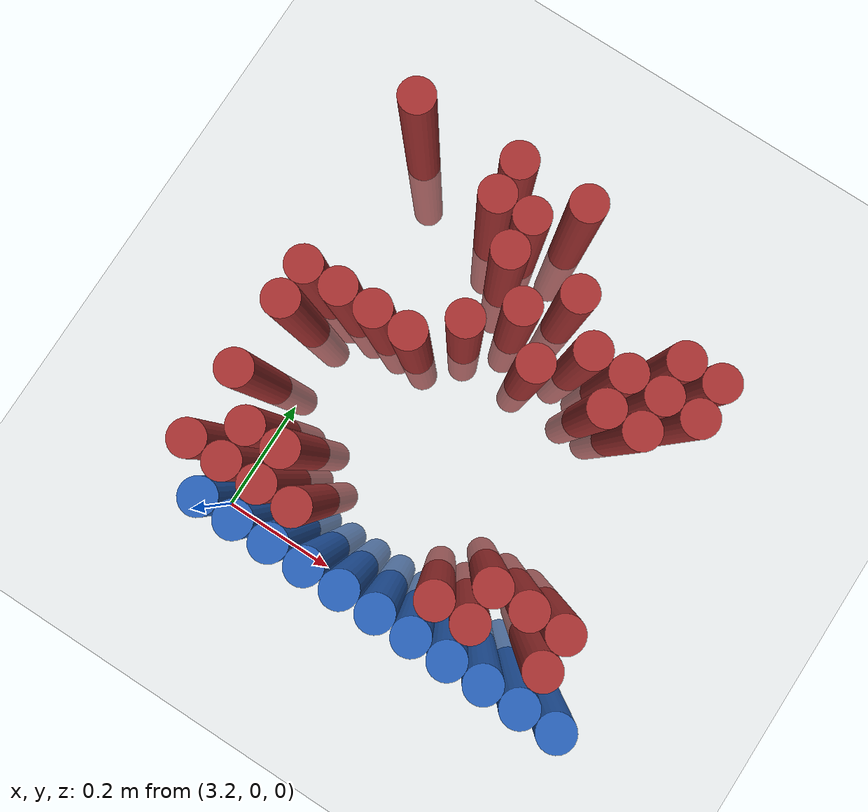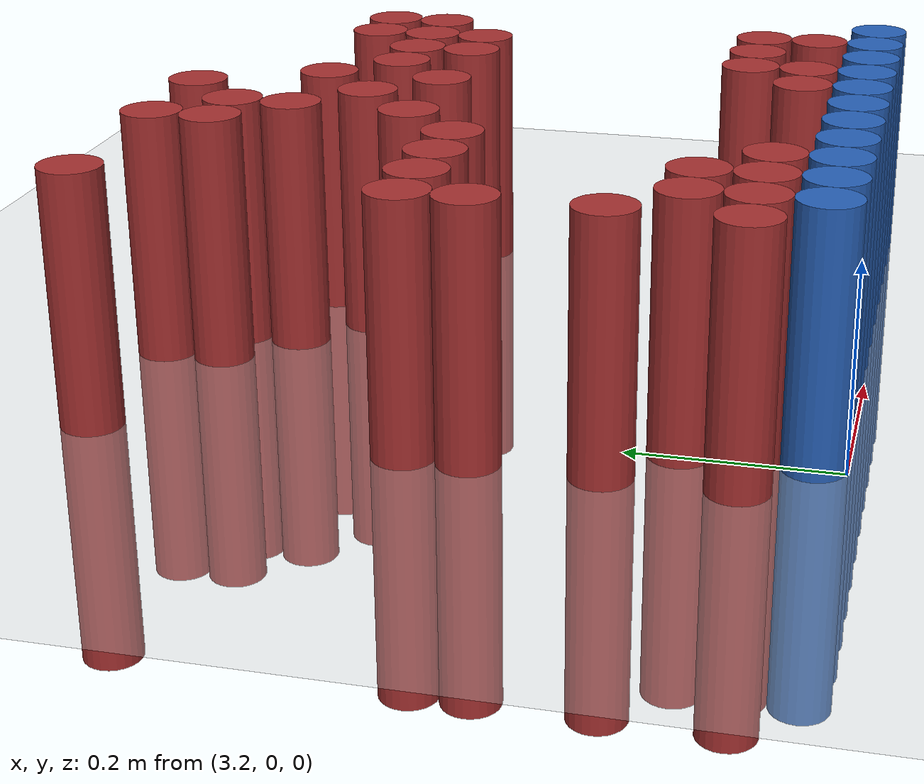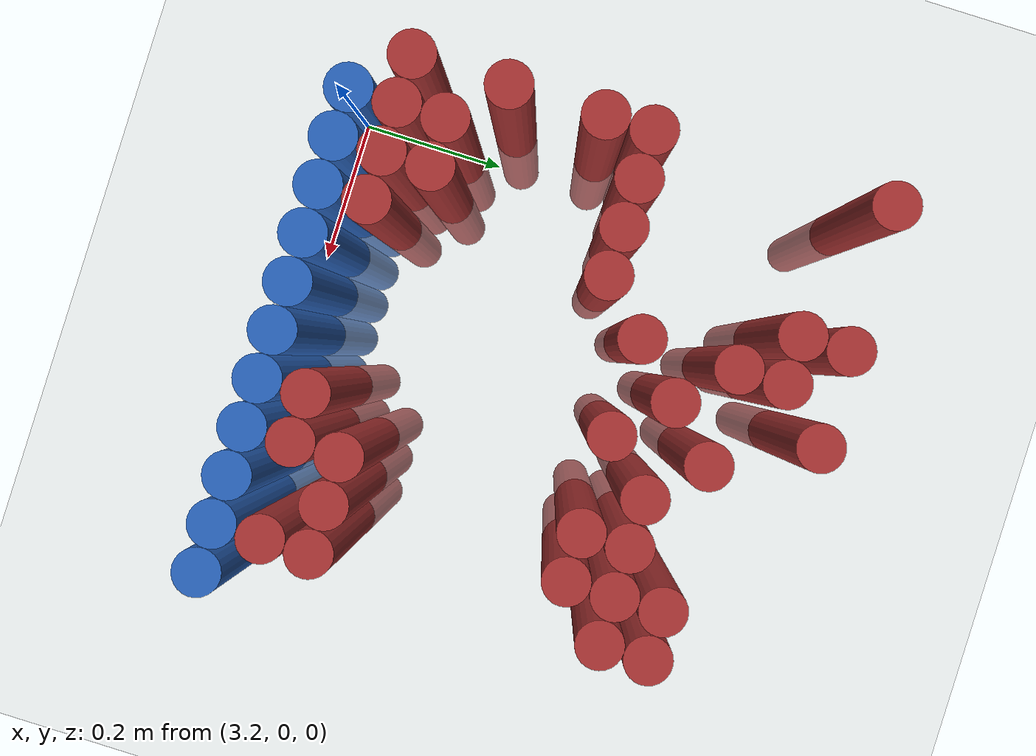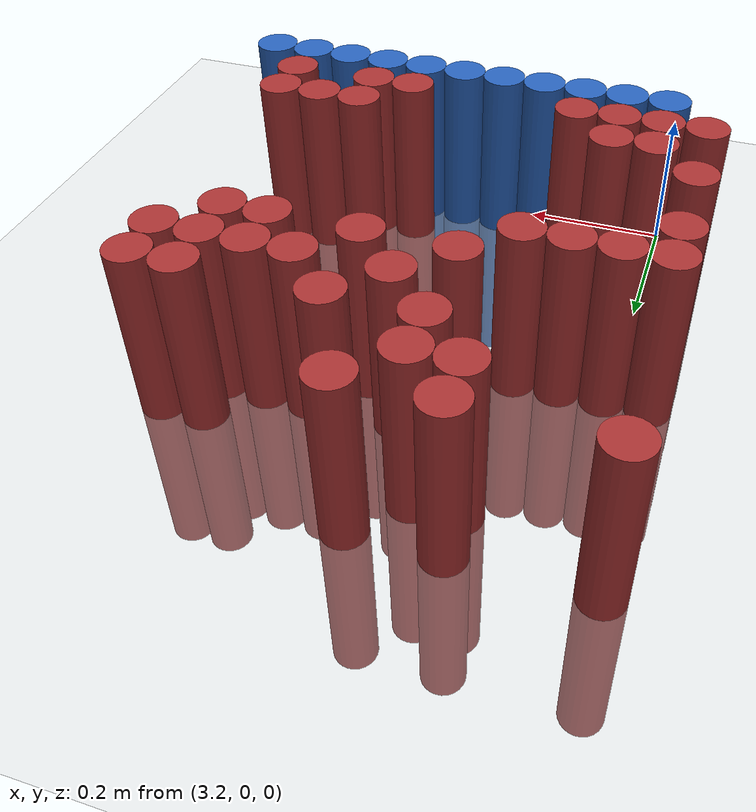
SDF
<sdf version="1.6">
 <world name="default">
  <model name="ground_plane">
   <static>1</static>
   <link name="link">
    <collision name="collision">
     <geometry><plane><normal>0 0 1</normal><size>100 100</size></plane></geometry>
     <surface><friction><ode><mu>100</mu><mu2>50</mu2></ode></friction></surface>
    </collision>
    <visual name="visual">
     <cast_shadows>0</cast_shadows>
     <geometry><plane><normal>0 0 1</normal><size>100 100</size></plane></geometry>
     <material>
      <script><uri>file://media/materials/scripts/gazebo.material</uri><name>Gazebo/Grey</name></script>
     </material>
    </visual>
   </link>
  </model>
  <model name="unit_cylinder_215">
   <static>1</static>
   <pose>3.150000 0.690000 0.000000 0.000000 0.000000 0.000000</pose>
   <link name="link">
    <inertial>
     <mass>1</mass>
     <inertia><ixx>0.145833</ixx><ixy>0</ixy><ixz>0</ixz><iyy>0.145833</iyy><iyz>0</iyz><izz>0.125</izz></inertia>
    </inertial>
    <collision name="collision">
     <geometry><cylinder><radius>0.030000</radius><length>0.5</length></cylinder></geometry>
    </collision>
    <visual name="visual">
     <geometry><cylinder><radius>0.030000</radius><length>0.5</length></cylinder></geometry>
     <material>
      <ambient>0.648000 0.192000 0.192000 1</ambient>
      <diffuse>0.648000 0.192000 0.192000 1</diffuse>
     </material>
     <material>
      <script><name>Gazebo/Grey</name><uri>file://media/materials/scripts/gazebo.material</uri></script>
     </material>
    </visual>
   </link>
  </model>
  <model name="unit_cylinder_216">
   <static>1</static>
   <pose>3.330000 0.690000 0.000000 0.000000 0.000000 0.000000</pose>
   <link name="link">
    <inertial>
     <mass>1</mass>
     <inertia><ixx>0.145833</ixx><ixy>0</ixy><ixz>0</ixz><iyy>0.145833</iyy><iyz>0</iyz><izz>0.125</izz></inertia>
    </inertial>
    <collision name="collision">
     <geometry><cylinder><radius>0.030000</radius><length>0.5</length></cylinder></geometry>
    </collision>
    <visual name="visual">
     <geometry><cylinder><radius>0.030000</radius><length>0.5</length></cylinder></geometry>
     <material>
      <ambient>0.648000 0.192000 0.192000 1</ambient>
      <diffuse>0.648000 0.192000 0.192000 1</diffuse>
     </material>
     <material>
      <script><name>Gazebo/Grey</name><uri>file://media/materials/scripts/gazebo.material</uri></script>
     </material>
    </visual>
   </link>
  </model>
  <model name="unit_cylinder_217">
   <static>1</static>
   <pose>3.450000 0.690000 0.000000 0.000000 0.000000 0.000000</pose>
   <link name="link">
    <inertial>
     <mass>1</mass>
     <inertia><ixx>0.145833</ixx><ixy>0</ixy><ixz>0</ixz><iyy>0.145833</iyy><iyz>0</iyz><izz>0.125</izz></inertia>
    </inertial>
    <collision name="collision">
     <geometry><cylinder><radius>0.030000</radius><length>0.5</length></cylinder></geometry>
    </collision>
    <visual name="visual">
     <geometry><cylinder><radius>0.030000</radius><length>0.5</length></cylinder></geometry>
     <material>
      <ambient>0.648000 0.192000 0.192000 1</ambient>
      <diffuse>0.648000 0.192000 0.192000 1</diffuse>
     </material>
     <material>
      <script><name>Gazebo/Grey</name><uri>file://media/materials/scripts/gazebo.material</uri></script>
     </material>
    </visual>
   </link>
  </model>
  <model name="unit_cylinder_221">
   <static>1</static>
   <pose>3.330000 0.630000 0.000000 0.000000 0.000000 0.000000</pose>
   <link name="link">
    <inertial>
     <mass>1</mass>
     <inertia><ixx>0.145833</ixx><ixy>0</ixy><ixz>0</ixz><iyy>0.145833</iyy><iyz>0</iyz><izz>0.125</izz></inertia>
    </inertial>
    <collision name="collision">
     <geometry><cylinder><radius>0.030000</radius><length>0.5</length></cylinder></geometry>
    </collision>
    <visual name="visual">
     <geometry><cylinder><radius>0.030000</radius><length>0.5</length></cylinder></geometry>
     <material>
      <ambient>0.648000 0.192000 0.192000 1</ambient>
      <diffuse>0.648000 0.192000 0.192000 1</diffuse>
     </material>
     <material>
      <script><name>Gazebo/Grey</name><uri>file://media/materials/scripts/gazebo.material</uri></script>
     </material>
    </visual>
   </link>
  </model>
  <model name="unit_cylinder_222">
   <static>1</static>
   <pose>3.390000 0.630000 0.000000 0.000000 0.000000 0.000000</pose>
   <link name="link">
    <inertial>
     <mass>1</mass>
     <inertia><ixx>0.145833</ixx><ixy>0</ixy><ixz>0</ixz><iyy>0.145833</iyy><iyz>0</iyz><izz>0.125</izz></inertia>
    </inertial>
    <collision name="collision">
     <geometry><cylinder><radius>0.030000</radius><length>0.5</length></cylinder></geometry>
    </collision>
    <visual name="visual">
     <geometry><cylinder><radius>0.030000</radius><length>0.5</length></cylinder></geometry>
     <material>
      <ambient>0.648000 0.192000 0.192000 1</ambient>
      <diffuse>0.648000 0.192000 0.192000 1</diffuse>
     </material>
     <material>
      <script><name>Gazebo/Grey</name><uri>file://media/materials/scripts/gazebo.material</uri></script>
     </material>
    </visual>
   </link>
  </model>
  <model name="unit_cylinder_227">
   <static>1</static>
   <pose>3.390000 0.570000 0.000000 0.000000 0.000000 0.000000</pose>
   <link name="link">
    <inertial>
     <mass>1</mass>
     <inertia><ixx>0.145833</ixx><ixy>0</ixy><ixz>0</ixz><iyy>0.145833</iyy><iyz>0</iyz><izz>0.125</izz></inertia>
    </inertial>
    <collision name="collision">
     <geometry><cylinder><radius>0.030000</radius><length>0.5</length></cylinder></geometry>
    </collision>
    <visual name="visual">
     <geometry><cylinder><radius>0.030000</radius><length>0.5</length></cylinder></geometry>
     <material>
      <ambient>0.648000 0.192000 0.192000 1</ambient>
      <diffuse>0.648000 0.192000 0.192000 1</diffuse>
     </material>
     <material>
      <script><name>Gazebo/Grey</name><uri>file://media/materials/scripts/gazebo.material</uri></script>
     </material>
    </visual>
   </link>
  </model>
  <model name="unit_cylinder_228">
   <static>1</static>
   <pose>3.510000 0.570000 0.000000 0.000000 0.000000 0.000000</pose>
   <link name="link">
    <inertial>
     <mass>1</mass>
     <inertia><ixx>0.145833</ixx><ixy>0</ixy><ixz>0</ixz><iyy>0.145833</iyy><iyz>0</iyz><izz>0.125</izz></inertia>
    </inertial>
    <collision name="collision">
     <geometry><cylinder><radius>0.030000</radius><length>0.5</length></cylinder></geometry>
    </collision>
    <visual name="visual">
     <geometry><cylinder><radius>0.030000</radius><length>0.5</length></cylinder></geometry>
     <material>
      <ambient>0.648000 0.192000 0.192000 1</ambient>
      <diffuse>0.648000 0.192000 0.192000 1</diffuse>
     </material>
     <material>
      <script><name>Gazebo/Grey</name><uri>file://media/materials/scripts/gazebo.material</uri></script>
     </material>
    </visual>
   </link>
  </model>
  <model name="unit_cylinder_229">
   <static>1</static>
   <pose>3.690000 0.570000 0.000000 0.000000 0.000000 0.000000</pose>
   <link name="link">
    <inertial>
     <mass>1</mass>
     <inertia><ixx>0.145833</ixx><ixy>0</ixy><ixz>0</ixz><iyy>0.145833</iyy><iyz>0</iyz><izz>0.125</izz></inertia>
    </inertial>
    <collision name="collision">
     <geometry><cylinder><radius>0.030000</radius><length>0.5</length></cylinder></geometry>
    </collision>
    <visual name="visual">
     <geometry><cylinder><radius>0.030000</radius><length>0.5</length></cylinder></geometry>
     <material>
      <ambient>0.648000 0.192000 0.192000 1</ambient>
      <diffuse>0.648000 0.192000 0.192000 1</diffuse>
     </material>
     <material>
      <script><name>Gazebo/Grey</name><uri>file://media/materials/scripts/gazebo.material</uri></script>
     </material>
    </visual>
   </link>
  </model>
  <model name="unit_cylinder_230">
   <static>1</static>
   <pose>3.750000 0.570000 0.000000 0.000000 0.000000 0.000000</pose>
   <link name="link">
    <inertial>
     <mass>1</mass>
     <inertia><ixx>0.145833</ixx><ixy>0</ixy><ixz>0</ixz><iyy>0.145833</iyy><iyz>0</iyz><izz>0.125</izz></inertia>
    </inertial>
    <collision name="collision">
     <geometry><cylinder><radius>0.030000</radius><length>0.5</length></cylinder></geometry>
    </collision>
    <visual name="visual">
     <geometry><cylinder><radius>0.030000</radius><length>0.5</length></cylinder></geometry>
     <material>
      <ambient>0.648000 0.192000 0.192000 1</ambient>
      <diffuse>0.648000 0.192000 0.192000 1</diffuse>
     </material>
     <material>
      <script><name>Gazebo/Grey</name><uri>file://media/materials/scripts/gazebo.material</uri></script>
     </material>
    </visual>
   </link>
  </model>
  <model name="unit_cylinder_234">
   <static>1</static>
   <pose>3.450000 0.510000 0.000000 0.000000 0.000000 0.000000</pose>
   <link name="link">
    <inertial>
     <mass>1</mass>
     <inertia><ixx>0.145833</ixx><ixy>0</ixy><ixz>0</ixz><iyy>0.145833</iyy><iyz>0</iyz><izz>0.125</izz></inertia>
    </inertial>
    <collision name="collision">
     <geometry><cylinder><radius>0.030000</radius><length>0.5</length></cylinder></geometry>
    </collision>
    <visual name="visual">
     <geometry><cylinder><radius>0.030000</radius><length>0.5</length></cylinder></geometry>
     <material>
      <ambient>0.648000 0.192000 0.192000 1</ambient>
      <diffuse>0.648000 0.192000 0.192000 1</diffuse>
     </material>
     <material>
      <script><name>Gazebo/Grey</name><uri>file://media/materials/scripts/gazebo.material</uri></script>
     </material>
    </visual>
   </link>
  </model>
  <model name="unit_cylinder_235">
   <static>1</static>
   <pose>3.570000 0.510000 0.000000 0.000000 0.000000 0.000000</pose>
   <link name="link">
    <inertial>
     <mass>1</mass>
     <inertia><ixx>0.145833</ixx><ixy>0</ixy><ixz>0</ixz><iyy>0.145833</iyy><iyz>0</iyz><izz>0.125</izz></inertia>
    </inertial>
    <collision name="collision">
     <geometry><cylinder><radius>0.030000</radius><length>0.5</length></cylinder></geometry>
    </collision>
    <visual name="visual">
     <geometry><cylinder><radius>0.030000</radius><length>0.5</length></cylinder></geometry>
     <material>
      <ambient>0.648000 0.192000 0.192000 1</ambient>
      <diffuse>0.648000 0.192000 0.192000 1</diffuse>
     </material>
     <material>
      <script><name>Gazebo/Grey</name><uri>file://media/materials/scripts/gazebo.material</uri></script>
     </material>
    </visual>
   </link>
  </model>
  <model name="unit_cylinder_236">
   <static>1</static>
   <pose>3.630000 0.510000 0.000000 0.000000 0.000000 0.000000</pose>
   <link name="link">
    <inertial>
     <mass>1</mass>
     <inertia><ixx>0.145833</ixx><ixy>0</ixy><ixz>0</ixz><iyy>0.145833</iyy><iyz>0</iyz><izz>0.125</izz></inertia>
    </inertial>
    <collision name="collision">
     <geometry><cylinder><radius>0.030000</radius><length>0.5</length></cylinder></geometry>
    </collision>
    <visual name="visual">
     <geometry><cylinder><radius>0.030000</radius><length>0.5</length></cylinder></geometry>
     <material>
      <ambient>0.648000 0.192000 0.192000 1</ambient>
      <diffuse>0.648000 0.192000 0.192000 1</diffuse>
     </material>
     <material>
      <script><name>Gazebo/Grey</name><uri>file://media/materials/scripts/gazebo.material</uri></script>
     </material>
    </visual>
   </link>
  </model>
  <model name="unit_cylinder_237">
   <static>1</static>
   <pose>3.690000 0.510000 0.000000 0.000000 0.000000 0.000000</pose>
   <link name="link">
    <inertial>
     <mass>1</mass>
     <inertia><ixx>0.145833</ixx><ixy>0</ixy><ixz>0</ixz><iyy>0.145833</iyy><iyz>0</iyz><izz>0.125</izz></inertia>
    </inertial>
    <collision name="collision">
     <geometry><cylinder><radius>0.030000</radius><length>0.5</length></cylinder></geometry>
    </collision>
    <visual name="visual">
     <geometry><cylinder><radius>0.030000</radius><length>0.5</length></cylinder></geometry>
     <material>
      <ambient>0.648000 0.192000 0.192000 1</ambient>
      <diffuse>0.648000 0.192000 0.192000 1</diffuse>
     </material>
     <material>
      <script><name>Gazebo/Grey</name><uri>file://media/materials/scripts/gazebo.material</uri></script>
     </material>
    </visual>
   </link>
  </model>
  <model name="unit_cylinder_238">
   <static>1</static>
   <pose>3.750000 0.510000 0.000000 0.000000 0.000000 0.000000</pose>
   <link name="link">
    <inertial>
     <mass>1</mass>
     <inertia><ixx>0.145833</ixx><ixy>0</ixy><ixz>0</ixz><iyy>0.145833</iyy><iyz>0</iyz><izz>0.125</izz></inertia>
    </inertial>
    <collision name="collision">
     <geometry><cylinder><radius>0.030000</radius><length>0.5</length></cylinder></geometry>
    </collision>
    <visual name="visual">
     <geometry><cylinder><radius>0.030000</radius><length>0.5</length></cylinder></geometry>
     <material>
      <ambient>0.648000 0.192000 0.192000 1</ambient>
      <diffuse>0.648000 0.192000 0.192000 1</diffuse>
     </material>
     <material>
      <script><name>Gazebo/Grey</name><uri>file://media/materials/scripts/gazebo.material</uri></script>
     </material>
    </visual>
   </link>
  </model>
  <model name="unit_cylinder_242">
   <static>1</static>
   <pose>3.390000 0.450000 0.000000 0.000000 0.000000 0.000000</pose>
   <link name="link">
    <inertial>
     <mass>1</mass>
     <inertia><ixx>0.145833</ixx><ixy>0</ixy><ixz>0</ixz><iyy>0.145833</iyy><iyz>0</iyz><izz>0.125</izz></inertia>
    </inertial>
    <collision name="collision">
     <geometry><cylinder><radius>0.030000</radius><length>0.5</length></cylinder></geometry>
    </collision>
    <visual name="visual">
     <geometry><cylinder><radius>0.030000</radius><length>0.5</length></cylinder></geometry>
     <material>
      <ambient>0.648000 0.192000 0.192000 1</ambient>
      <diffuse>0.648000 0.192000 0.192000 1</diffuse>
     </material>
     <material>
      <script><name>Gazebo/Grey</name><uri>file://media/materials/scripts/gazebo.material</uri></script>
     </material>
    </visual>
   </link>
  </model>
  <model name="unit_cylinder_243">
   <static>1</static>
   <pose>3.510000 0.450000 0.000000 0.000000 0.000000 0.000000</pose>
   <link name="link">
    <inertial>
     <mass>1</mass>
     <inertia><ixx>0.145833</ixx><ixy>0</ixy><ixz>0</ixz><iyy>0.145833</iyy><iyz>0</iyz><izz>0.125</izz></inertia>
    </inertial>
    <collision name="collision">
     <geometry><cylinder><radius>0.030000</radius><length>0.5</length></cylinder></geometry>
    </collision>
    <visual name="visual">
     <geometry><cylinder><radius>0.030000</radius><length>0.5</length></cylinder></geometry>
     <material>
      <ambient>0.648000 0.192000 0.192000 1</ambient>
      <diffuse>0.648000 0.192000 0.192000 1</diffuse>
     </material>
     <material>
      <script><name>Gazebo/Grey</name><uri>file://media/materials/scripts/gazebo.material</uri></script>
     </material>
    </visual>
   </link>
  </model>
  <model name="unit_cylinder_244">
   <static>1</static>
   <pose>3.630000 0.450000 0.000000 0.000000 0.000000 0.000000</pose>
   <link name="link">
    <inertial>
     <mass>1</mass>
     <inertia><ixx>0.145833</ixx><ixy>0</ixy><ixz>0</ixz><iyy>0.145833</iyy><iyz>0</iyz><izz>0.125</izz></inertia>
    </inertial>
    <collision name="collision">
     <geometry><cylinder><radius>0.030000</radius><length>0.5</length></cylinder></geometry>
    </collision>
    <visual name="visual">
     <geometry><cylinder><radius>0.030000</radius><length>0.5</length></cylinder></geometry>
     <material>
      <ambient>0.648000 0.192000 0.192000 1</ambient>
      <diffuse>0.648000 0.192000 0.192000 1</diffuse>
     </material>
     <material>
      <script><name>Gazebo/Grey</name><uri>file://media/materials/scripts/gazebo.material</uri></script>
     </material>
    </visual>
   </link>
  </model>
  <model name="unit_cylinder_245">
   <static>1</static>
   <pose>3.690000 0.450000 0.000000 0.000000 0.000000 0.000000</pose>
   <link name="link">
    <inertial>
     <mass>1</mass>
     <inertia><ixx>0.145833</ixx><ixy>0</ixy><ixz>0</ixz><iyy>0.145833</iyy><iyz>0</iyz><izz>0.125</izz></inertia>
    </inertial>
    <collision name="collision">
     <geometry><cylinder><radius>0.030000</radius><length>0.5</length></cylinder></geometry>
    </collision>
    <visual name="visual">
     <geometry><cylinder><radius>0.030000</radius><length>0.5</length></cylinder></geometry>
     <material>
      <ambient>0.648000 0.192000 0.192000 1</ambient>
      <diffuse>0.648000 0.192000 0.192000 1</diffuse>
     </material>
     <material>
      <script><name>Gazebo/Grey</name><uri>file://media/materials/scripts/gazebo.material</uri></script>
     </material>
    </visual>
   </link>
  </model>
  <model name="unit_cylinder_250">
   <static>1</static>
   <pose>3.150000 0.390000 0.000000 0.000000 0.000000 0.000000</pose>
   <link name="link">
    <inertial>
     <mass>1</mass>
     <inertia><ixx>0.145833</ixx><ixy>0</ixy><ixz>0</ixz><iyy>0.145833</iyy><iyz>0</iyz><izz>0.125</izz></inertia>
    </inertial>
    <collision name="collision">
     <geometry><cylinder><radius>0.030000</radius><length>0.5</length></cylinder></geometry>
    </collision>
    <visual name="visual">
     <geometry><cylinder><radius>0.030000</radius><length>0.5</length></cylinder></geometry>
     <material>
      <ambient>0.648000 0.192000 0.192000 1</ambient>
      <diffuse>0.648000 0.192000 0.192000 1</diffuse>
     </material>
     <material>
      <script><name>Gazebo/Grey</name><uri>file://media/materials/scripts/gazebo.material</uri></script>
     </material>
    </visual>
   </link>
  </model>
  <model name="unit_cylinder_251">
   <static>1</static>
   <pose>3.210000 0.390000 0.000000 0.000000 0.000000 0.000000</pose>
   <link name="link">
    <inertial>
     <mass>1</mass>
     <inertia><ixx>0.145833</ixx><ixy>0</ixy><ixz>0</ixz><iyy>0.145833</iyy><iyz>0</iyz><izz>0.125</izz></inertia>
    </inertial>
    <collision name="collision">
     <geometry><cylinder><radius>0.030000</radius><length>0.5</length></cylinder></geometry>
    </collision>
    <visual name="visual">
     <geometry><cylinder><radius>0.030000</radius><length>0.5</length></cylinder></geometry>
     <material>
      <ambient>0.648000 0.192000 0.192000 1</ambient>
      <diffuse>0.648000 0.192000 0.192000 1</diffuse>
     </material>
     <material>
      <script><name>Gazebo/Grey</name><uri>file://media/materials/scripts/gazebo.material</uri></script>
     </material>
    </visual>
   </link>
  </model>
  <model name="unit_cylinder_252">
   <static>1</static>
   <pose>3.270000 0.390000 0.000000 0.000000 0.000000 0.000000</pose>
   <link name="link">
    <inertial>
     <mass>1</mass>
     <inertia><ixx>0.145833</ixx><ixy>0</ixy><ixz>0</ixz><iyy>0.145833</iyy><iyz>0</iyz><izz>0.125</izz></inertia>
    </inertial>
    <collision name="collision">
     <geometry><cylinder><radius>0.030000</radius><length>0.5</length></cylinder></geometry>
    </collision>
    <visual name="visual">
     <geometry><cylinder><radius>0.030000</radius><length>0.5</length></cylinder></geometry>
     <material>
      <ambient>0.648000 0.192000 0.192000 1</ambient>
      <diffuse>0.648000 0.192000 0.192000 1</diffuse>
     </material>
     <material>
      <script><name>Gazebo/Grey</name><uri>file://media/materials/scripts/gazebo.material</uri></script>
     </material>
    </visual>
   </link>
  </model>
  <model name="unit_cylinder_253">
   <static>1</static>
   <pose>3.330000 0.390000 0.000000 0.000000 0.000000 0.000000</pose>
   <link name="link">
    <inertial>
     <mass>1</mass>
     <inertia><ixx>0.145833</ixx><ixy>0</ixy><ixz>0</ixz><iyy>0.145833</iyy><iyz>0</iyz><izz>0.125</izz></inertia>
    </inertial>
    <collision name="collision">
     <geometry><cylinder><radius>0.030000</radius><length>0.5</length></cylinder></geometry>
    </collision>
    <visual name="visual">
     <geometry><cylinder><radius>0.030000</radius><length>0.5</length></cylinder></geometry>
     <material>
      <ambient>0.648000 0.192000 0.192000 1</ambient>
      <diffuse>0.648000 0.192000 0.192000 1</diffuse>
     </material>
     <material>
      <script><name>Gazebo/Grey</name><uri>file://media/materials/scripts/gazebo.material</uri></script>
     </material>
    </visual>
   </link>
  </model>
  <model name="unit_cylinder_260">
   <static>1</static>
   <pose>3.150000 0.330000 0.000000 0.000000 0.000000 0.000000</pose>
   <link name="link">
    <inertial>
     <mass>1</mass>
     <inertia><ixx>0.145833</ixx><ixy>0</ixy><ixz>0</ixz><iyy>0.145833</iyy><iyz>0</iyz><izz>0.125</izz></inertia>
    </inertial>
    <collision name="collision">
     <geometry><cylinder><radius>0.030000</radius><length>0.5</length></cylinder></geometry>
    </collision>
    <visual name="visual">
     <geometry><cylinder><radius>0.030000</radius><length>0.5</length></cylinder></geometry>
     <material>
      <ambient>0.648000 0.192000 0.192000 1</ambient>
      <diffuse>0.648000 0.192000 0.192000 1</diffuse>
     </material>
     <material>
      <script><name>Gazebo/Grey</name><uri>file://media/materials/scripts/gazebo.material</uri></script>
     </material>
    </visual>
   </link>
  </model>
  <model name="unit_cylinder_268">
   <static>1</static>
   <pose>3.150000 0.210000 0.000000 0.000000 0.000000 0.000000</pose>
   <link name="link">
    <inertial>
     <mass>1</mass>
     <inertia><ixx>0.145833</ixx><ixy>0</ixy><ixz>0</ixz><iyy>0.145833</iyy><iyz>0</iyz><izz>0.125</izz></inertia>
    </inertial>
    <collision name="collision">
     <geometry><cylinder><radius>0.030000</radius><length>0.5</length></cylinder></geometry>
    </collision>
    <visual name="visual">
     <geometry><cylinder><radius>0.030000</radius><length>0.5</length></cylinder></geometry>
     <material>
      <ambient>0.648000 0.192000 0.192000 1</ambient>
      <diffuse>0.648000 0.192000 0.192000 1</diffuse>
     </material>
     <material>
      <script><name>Gazebo/Grey</name><uri>file://media/materials/scripts/gazebo.material</uri></script>
     </material>
    </visual>
   </link>
  </model>
  <model name="unit_cylinder_279">
   <static>1</static>
   <pose>3.210000 0.150000 0.000000 0.000000 0.000000 0.000000</pose>
   <link name="link">
    <inertial>
     <mass>1</mass>
     <inertia><ixx>0.145833</ixx><ixy>0</ixy><ixz>0</ixz><iyy>0.145833</iyy><iyz>0</iyz><izz>0.125</izz></inertia>
    </inertial>
    <collision name="collision">
     <geometry><cylinder><radius>0.030000</radius><length>0.5</length></cylinder></geometry>
    </collision>
    <visual name="visual">
     <geometry><cylinder><radius>0.030000</radius><length>0.5</length></cylinder></geometry>
     <material>
      <ambient>0.648000 0.192000 0.192000 1</ambient>
      <diffuse>0.648000 0.192000 0.192000 1</diffuse>
     </material>
     <material>
      <script><name>Gazebo/Grey</name><uri>file://media/materials/scripts/gazebo.material</uri></script>
     </material>
    </visual>
   </link>
  </model>
  <model name="unit_cylinder_280">
   <static>1</static>
   <pose>3.270000 0.150000 0.000000 0.000000 0.000000 0.000000</pose>
   <link name="link">
    <inertial>
     <mass>1</mass>
     <inertia><ixx>0.145833</ixx><ixy>0</ixy><ixz>0</ixz><iyy>0.145833</iyy><iyz>0</iyz><izz>0.125</izz></inertia>
    </inertial>
    <collision name="collision">
     <geometry><cylinder><radius>0.030000</radius><length>0.5</length></cylinder></geometry>
    </collision>
    <visual name="visual">
     <geometry><cylinder><radius>0.030000</radius><length>0.5</length></cylinder></geometry>
     <material>
      <ambient>0.648000 0.192000 0.192000 1</ambient>
      <diffuse>0.648000 0.192000 0.192000 1</diffuse>
     </material>
     <material>
      <script><name>Gazebo/Grey</name><uri>file://media/materials/scripts/gazebo.material</uri></script>
     </material>
    </visual>
   </link>
  </model>
  <model name="unit_cylinder_281">
   <static>1</static>
   <pose>3.630000 0.150000 0.000000 0.000000 0.000000 0.000000</pose>
   <link name="link">
    <inertial>
     <mass>1</mass>
     <inertia><ixx>0.145833</ixx><ixy>0</ixy><ixz>0</ixz><iyy>0.145833</iyy><iyz>0</iyz><izz>0.125</izz></inertia>
    </inertial>
    <collision name="collision">
     <geometry><cylinder><radius>0.030000</radius><length>0.5</length></cylinder></geometry>
    </collision>
    <visual name="visual">
     <geometry><cylinder><radius>0.030000</radius><length>0.5</length></cylinder></geometry>
     <material>
      <ambient>0.648000 0.192000 0.192000 1</ambient>
      <diffuse>0.648000 0.192000 0.192000 1</diffuse>
     </material>
     <material>
      <script><name>Gazebo/Grey</name><uri>file://media/materials/scripts/gazebo.material</uri></script>
     </material>
    </visual>
   </link>
  </model>
  <model name="unit_cylinder_282">
   <static>1</static>
   <pose>3.690000 0.150000 0.000000 0.000000 0.000000 0.000000</pose>
   <link name="link">
    <inertial>
     <mass>1</mass>
     <inertia><ixx>0.145833</ixx><ixy>0</ixy><ixz>0</ixz><iyy>0.145833</iyy><iyz>0</iyz><izz>0.125</izz></inertia>
    </inertial>
    <collision name="collision">
     <geometry><cylinder><radius>0.030000</radius><length>0.5</length></cylinder></geometry>
    </collision>
    <visual name="visual">
     <geometry><cylinder><radius>0.030000</radius><length>0.5</length></cylinder></geometry>
     <material>
      <ambient>0.648000 0.192000 0.192000 1</ambient>
      <diffuse>0.648000 0.192000 0.192000 1</diffuse>
     </material>
     <material>
      <script><name>Gazebo/Grey</name><uri>file://media/materials/scripts/gazebo.material</uri></script>
     </material>
    </visual>
   </link>
  </model>
  <model name="unit_cylinder_283">
   <static>1</static>
   <pose>3.750000 0.150000 0.000000 0.000000 0.000000 0.000000</pose>
   <link name="link">
    <inertial>
     <mass>1</mass>
     <inertia><ixx>0.145833</ixx><ixy>0</ixy><ixz>0</ixz><iyy>0.145833</iyy><iyz>0</iyz><izz>0.125</izz></inertia>
    </inertial>
    <collision name="collision">
     <geometry><cylinder><radius>0.030000</radius><length>0.5</length></cylinder></geometry>
    </collision>
    <visual name="visual">
     <geometry><cylinder><radius>0.030000</radius><length>0.5</length></cylinder></geometry>
     <material>
      <ambient>0.648000 0.192000 0.192000 1</ambient>
      <diffuse>0.648000 0.192000 0.192000 1</diffuse>
     </material>
     <material>
      <script><name>Gazebo/Grey</name><uri>file://media/materials/scripts/gazebo.material</uri></script>
     </material>
    </visual>
   </link>
  </model>
  <model name="unit_cylinder_291">
   <static>1</static>
   <pose>3.150000 0.090000 0.000000 0.000000 0.000000 0.000000</pose>
   <link name="link">
    <inertial>
     <mass>1</mass>
     <inertia><ixx>0.145833</ixx><ixy>0</ixy><ixz>0</ixz><iyy>0.145833</iyy><iyz>0</iyz><izz>0.125</izz></inertia>
    </inertial>
    <collision name="collision">
     <geometry><cylinder><radius>0.030000</radius><length>0.5</length></cylinder></geometry>
    </collision>
    <visual name="visual">
     <geometry><cylinder><radius>0.030000</radius><length>0.5</length></cylinder></geometry>
     <material>
      <ambient>0.648000 0.192000 0.192000 1</ambient>
      <diffuse>0.648000 0.192000 0.192000 1</diffuse>
     </material>
     <material>
      <script><name>Gazebo/Grey</name><uri>file://media/materials/scripts/gazebo.material</uri></script>
     </material>
    </visual>
   </link>
  </model>
  <model name="unit_cylinder_292">
   <static>1</static>
   <pose>3.210000 0.090000 0.000000 0.000000 0.000000 0.000000</pose>
   <link name="link">
    <inertial>
     <mass>1</mass>
     <inertia><ixx>0.145833</ixx><ixy>0</ixy><ixz>0</ixz><iyy>0.145833</iyy><iyz>0</iyz><izz>0.125</izz></inertia>
    </inertial>
    <collision name="collision">
     <geometry><cylinder><radius>0.030000</radius><length>0.5</length></cylinder></geometry>
    </collision>
    <visual name="visual">
     <geometry><cylinder><radius>0.030000</radius><length>0.5</length></cylinder></geometry>
     <material>
      <ambient>0.648000 0.192000 0.192000 1</ambient>
      <diffuse>0.648000 0.192000 0.192000 1</diffuse>
     </material>
     <material>
      <script><name>Gazebo/Grey</name><uri>file://media/materials/scripts/gazebo.material</uri></script>
     </material>
    </visual>
   </link>
  </model>
  <model name="unit_cylinder_293">
   <static>1</static>
   <pose>3.270000 0.090000 0.000000 0.000000 0.000000 0.000000</pose>
   <link name="link">
    <inertial>
     <mass>1</mass>
     <inertia><ixx>0.145833</ixx><ixy>0</ixy><ixz>0</ixz><iyy>0.145833</iyy><iyz>0</iyz><izz>0.125</izz></inertia>
    </inertial>
    <collision name="collision">
     <geometry><cylinder><radius>0.030000</radius><length>0.5</length></cylinder></geometry>
    </collision>
    <visual name="visual">
     <geometry><cylinder><radius>0.030000</radius><length>0.5</length></cylinder></geometry>
     <material>
      <ambient>0.648000 0.192000 0.192000 1</ambient>
      <diffuse>0.648000 0.192000 0.192000 1</diffuse>
     </material>
     <material>
      <script><name>Gazebo/Grey</name><uri>file://media/materials/scripts/gazebo.material</uri></script>
     </material>
    </visual>
   </link>
  </model>
  <model name="unit_cylinder_294">
   <static>1</static>
   <pose>3.330000 0.090000 0.000000 0.000000 0.000000 0.000000</pose>
   <link name="link">
    <inertial>
     <mass>1</mass>
     <inertia><ixx>0.145833</ixx><ixy>0</ixy><ixz>0</ixz><iyy>0.145833</iyy><iyz>0</iyz><izz>0.125</izz></inertia>
    </inertial>
    <collision name="collision">
     <geometry><cylinder><radius>0.030000</radius><length>0.5</length></cylinder></geometry>
    </collision>
    <visual name="visual">
     <geometry><cylinder><radius>0.030000</radius><length>0.5</length></cylinder></geometry>
     <material>
      <ambient>0.648000 0.192000 0.192000 1</ambient>
      <diffuse>0.648000 0.192000 0.192000 1</diffuse>
     </material>
     <material>
      <script><name>Gazebo/Grey</name><uri>file://media/materials/scripts/gazebo.material</uri></script>
     </material>
    </visual>
   </link>
  </model>
  <model name="unit_cylinder_295">
   <static>1</static>
   <pose>3.570000 0.090000 0.000000 0.000000 0.000000 0.000000</pose>
   <link name="link">
    <inertial>
     <mass>1</mass>
     <inertia><ixx>0.145833</ixx><ixy>0</ixy><ixz>0</ixz><iyy>0.145833</iyy><iyz>0</iyz><izz>0.125</izz></inertia>
    </inertial>
    <collision name="collision">
     <geometry><cylinder><radius>0.030000</radius><length>0.5</length></cylinder></geometry>
    </collision>
    <visual name="visual">
     <geometry><cylinder><radius>0.030000</radius><length>0.5</length></cylinder></geometry>
     <material>
      <ambient>0.648000 0.192000 0.192000 1</ambient>
      <diffuse>0.648000 0.192000 0.192000 1</diffuse>
     </material>
     <material>
      <script><name>Gazebo/Grey</name><uri>file://media/materials/scripts/gazebo.material</uri></script>
     </material>
    </visual>
   </link>
  </model>
  <model name="unit_cylinder_296">
   <static>1</static>
   <pose>3.630000 0.090000 0.000000 0.000000 0.000000 0.000000</pose>
   <link name="link">
    <inertial>
     <mass>1</mass>
     <inertia><ixx>0.145833</ixx><ixy>0</ixy><ixz>0</ixz><iyy>0.145833</iyy><iyz>0</iyz><izz>0.125</izz></inertia>
    </inertial>
    <collision name="collision">
     <geometry><cylinder><radius>0.030000</radius><length>0.5</length></cylinder></geometry>
    </collision>
    <visual name="visual">
     <geometry><cylinder><radius>0.030000</radius><length>0.5</length></cylinder></geometry>
     <material>
      <ambient>0.648000 0.192000 0.192000 1</ambient>
      <diffuse>0.648000 0.192000 0.192000 1</diffuse>
     </material>
     <material>
      <script><name>Gazebo/Grey</name><uri>file://media/materials/scripts/gazebo.material</uri></script>
     </material>
    </visual>
   </link>
  </model>
  <model name="unit_cylinder_297">
   <static>1</static>
   <pose>3.750000 0.090000 0.000000 0.000000 0.000000 0.000000</pose>
   <link name="link">
    <inertial>
     <mass>1</mass>
     <inertia><ixx>0.145833</ixx><ixy>0</ixy><ixz>0</ixz><iyy>0.145833</iyy><iyz>0</iyz><izz>0.125</izz></inertia>
    </inertial>
    <collision name="collision">
     <geometry><cylinder><radius>0.030000</radius><length>0.5</length></cylinder></geometry>
    </collision>
    <visual name="visual">
     <geometry><cylinder><radius>0.030000</radius><length>0.5</length></cylinder></geometry>
     <material>
      <ambient>0.648000 0.192000 0.192000 1</ambient>
      <diffuse>0.648000 0.192000 0.192000 1</diffuse>
     </material>
     <material>
      <script><name>Gazebo/Grey</name><uri>file://media/materials/scripts/gazebo.material</uri></script>
     </material>
    </visual>
   </link>
  </model>
  <model name="unit_cylinder_317">
   <static>1</static>
   <pose>3.210000 0.030000 0.000000 0.000000 0.000000 0.000000</pose>
   <link name="link">
    <inertial>
     <mass>1</mass>
     <inertia><ixx>0.145833</ixx><ixy>0</ixy><ixz>0</ixz><iyy>0.145833</iyy><iyz>0</iyz><izz>0.125</izz></inertia>
    </inertial>
    <collision name="collision">
     <geometry><cylinder><radius>0.030000</radius><length>0.5</length></cylinder></geometry>
    </collision>
    <visual name="visual">
     <geometry><cylinder><radius>0.030000</radius><length>0.5</length></cylinder></geometry>
     <material>
      <ambient>0.152000 0.379000 0.720000 1</ambient>
      <diffuse>0.152000 0.379000 0.720000 1</diffuse>
     </material>
     <material>
      <script><name>Gazebo/Grey</name><uri>file://media/materials/scripts/gazebo.material</uri></script>
     </material>
    </visual>
   </link>
  </model>
  <model name="unit_cylinder_318">
   <static>1</static>
   <pose>3.270000 0.030000 0.000000 0.000000 0.000000 0.000000</pose>
   <link name="link">
    <inertial>
     <mass>1</mass>
     <inertia><ixx>0.145833</ixx><ixy>0</ixy><ixz>0</ixz><iyy>0.145833</iyy><iyz>0</iyz><izz>0.125</izz></inertia>
    </inertial>
    <collision name="collision">
     <geometry><cylinder><radius>0.030000</radius><length>0.5</length></cylinder></geometry>
    </collision>
    <visual name="visual">
     <geometry><cylinder><radius>0.030000</radius><length>0.5</length></cylinder></geometry>
     <material>
      <ambient>0.152000 0.379000 0.720000 1</ambient>
      <diffuse>0.152000 0.379000 0.720000 1</diffuse>
     </material>
     <material>
      <script><name>Gazebo/Grey</name><uri>file://media/materials/scripts/gazebo.material</uri></script>
     </material>
    </visual>
   </link>
  </model>
  <model name="unit_cylinder_319">
   <static>1</static>
   <pose>3.330000 0.030000 0.000000 0.000000 0.000000 0.000000</pose>
   <link name="link">
    <inertial>
     <mass>1</mass>
     <inertia><ixx>0.145833</ixx><ixy>0</ixy><ixz>0</ixz><iyy>0.145833</iyy><iyz>0</iyz><izz>0.125</izz></inertia>
    </inertial>
    <collision name="collision">
     <geometry><cylinder><radius>0.030000</radius><length>0.5</length></cylinder></geometry>
    </collision>
    <visual name="visual">
     <geometry><cylinder><radius>0.030000</radius><length>0.5</length></cylinder></geometry>
     <material>
      <ambient>0.152000 0.379000 0.720000 1</ambient>
      <diffuse>0.152000 0.379000 0.720000 1</diffuse>
     </material>
     <material>
      <script><name>Gazebo/Grey</name><uri>file://media/materials/scripts/gazebo.material</uri></script>
     </material>
    </visual>
   </link>
  </model>
  <model name="unit_cylinder_320">
   <static>1</static>
   <pose>3.390000 0.030000 0.000000 0.000000 0.000000 0.000000</pose>
   <link name="link">
    <inertial>
     <mass>1</mass>
     <inertia><ixx>0.145833</ixx><ixy>0</ixy><ixz>0</ixz><iyy>0.145833</iyy><iyz>0</iyz><izz>0.125</izz></inertia>
    </inertial>
    <collision name="collision">
     <geometry><cylinder><radius>0.030000</radius><length>0.5</length></cylinder></geometry>
    </collision>
    <visual name="visual">
     <geometry><cylinder><radius>0.030000</radius><length>0.5</length></cylinder></geometry>
     <material>
      <ambient>0.152000 0.379000 0.720000 1</ambient>
      <diffuse>0.152000 0.379000 0.720000 1</diffuse>
     </material>
     <material>
      <script><name>Gazebo/Grey</name><uri>file://media/materials/scripts/gazebo.material</uri></script>
     </material>
    </visual>
   </link>
  </model>
  <model name="unit_cylinder_321">
   <static>1</static>
   <pose>3.450000 0.030000 0.000000 0.000000 0.000000 0.000000</pose>
   <link name="link">
    <inertial>
     <mass>1</mass>
     <inertia><ixx>0.145833</ixx><ixy>0</ixy><ixz>0</ixz><iyy>0.145833</iyy><iyz>0</iyz><izz>0.125</izz></inertia>
    </inertial>
    <collision name="collision">
     <geometry><cylinder><radius>0.030000</radius><length>0.5</length></cylinder></geometry>
    </collision>
    <visual name="visual">
     <geometry><cylinder><radius>0.030000</radius><length>0.5</length></cylinder></geometry>
     <material>
      <ambient>0.152000 0.379000 0.720000 1</ambient>
      <diffuse>0.152000 0.379000 0.720000 1</diffuse>
     </material>
     <material>
      <script><name>Gazebo/Grey</name><uri>file://media/materials/scripts/gazebo.material</uri></script>
     </material>
    </visual>
   </link>
  </model>
  <model name="unit_cylinder_322">
   <static>1</static>
   <pose>3.510000 0.030000 0.000000 0.000000 0.000000 0.000000</pose>
   <link name="link">
    <inertial>
     <mass>1</mass>
     <inertia><ixx>0.145833</ixx><ixy>0</ixy><ixz>0</ixz><iyy>0.145833</iyy><iyz>0</iyz><izz>0.125</izz></inertia>
    </inertial>
    <collision name="collision">
     <geometry><cylinder><radius>0.030000</radius><length>0.5</length></cylinder></geometry>
    </collision>
    <visual name="visual">
     <geometry><cylinder><radius>0.030000</radius><length>0.5</length></cylinder></geometry>
     <material>
      <ambient>0.152000 0.379000 0.720000 1</ambient>
      <diffuse>0.152000 0.379000 0.720000 1</diffuse>
     </material>
     <material>
      <script><name>Gazebo/Grey</name><uri>file://media/materials/scripts/gazebo.material</uri></script>
     </material>
    </visual>
   </link>
  </model>
  <model name="unit_cylinder_323">
   <static>1</static>
   <pose>3.570000 0.030000 0.000000 0.000000 0.000000 0.000000</pose>
   <link name="link">
    <inertial>
     <mass>1</mass>
     <inertia><ixx>0.145833</ixx><ixy>0</ixy><ixz>0</ixz><iyy>0.145833</iyy><iyz>0</iyz><izz>0.125</izz></inertia>
    </inertial>
    <collision name="collision">
     <geometry><cylinder><radius>0.030000</radius><length>0.5</length></cylinder></geometry>
    </collision>
    <visual name="visual">
     <geometry><cylinder><radius>0.030000</radius><length>0.5</length></cylinder></geometry>
     <material>
      <ambient>0.152000 0.379000 0.720000 1</ambient>
      <diffuse>0.152000 0.379000 0.720000 1</diffuse>
     </material>
     <material>
      <script><name>Gazebo/Grey</name><uri>file://media/materials/scripts/gazebo.material</uri></script>
     </material>
    </visual>
   </link>
  </model>
  <model name="unit_cylinder_324">
   <static>1</static>
   <pose>3.630000 0.030000 0.000000 0.000000 0.000000 0.000000</pose>
   <link name="link">
    <inertial>
     <mass>1</mass>
     <inertia><ixx>0.145833</ixx><ixy>0</ixy><ixz>0</ixz><iyy>0.145833</iyy><iyz>0</iyz><izz>0.125</izz></inertia>
    </inertial>
    <collision name="collision">
     <geometry><cylinder><radius>0.030000</radius><length>0.5</length></cylinder></geometry>
    </collision>
    <visual name="visual">
     <geometry><cylinder><radius>0.030000</radius><length>0.5</length></cylinder></geometry>
     <material>
      <ambient>0.152000 0.379000 0.720000 1</ambient>
      <diffuse>0.152000 0.379000 0.720000 1</diffuse>
     </material>
     <material>
      <script><name>Gazebo/Grey</name><uri>file://media/materials/scripts/gazebo.material</uri></script>
     </material>
    </visual>
   </link>
  </model>
  <model name="unit_cylinder_325">
   <static>1</static>
   <pose>3.690000 0.030000 0.000000 0.000000 0.000000 0.000000</pose>
   <link name="link">
    <inertial>
     <mass>1</mass>
     <inertia><ixx>0.145833</ixx><ixy>0</ixy><ixz>0</ixz><iyy>0.145833</iyy><iyz>0</iyz><izz>0.125</izz></inertia>
    </inertial>
    <collision name="collision">
     <geometry><cylinder><radius>0.030000</radius><length>0.5</length></cylinder></geometry>
    </collision>
    <visual name="visual">
     <geometry><cylinder><radius>0.030000</radius><length>0.5</length></cylinder></geometry>
     <material>
      <ambient>0.152000 0.379000 0.720000 1</ambient>
      <diffuse>0.152000 0.379000 0.720000 1</diffuse>
     </material>
     <material>
      <script><name>Gazebo/Grey</name><uri>file://media/materials/scripts/gazebo.material</uri></script>
     </material>
    </visual>
   </link>
  </model>
  <model name="unit_cylinder_326">
   <static>1</static>
   <pose>3.750000 0.030000 0.000000 0.000000 0.000000 0.000000</pose>
   <link name="link">
    <inertial>
     <mass>1</mass>
     <inertia><ixx>0.145833</ixx><ixy>0</ixy><ixz>0</ixz><iyy>0.145833</iyy><iyz>0</iyz><izz>0.125</izz></inertia>
    </inertial>
    <collision name="collision">
     <geometry><cylinder><radius>0.030000</radius><length>0.5</length></cylinder></geometry>
    </collision>
    <visual name="visual">
     <geometry><cylinder><radius>0.030000</radius><length>0.5</length></cylinder></geometry>
     <material>
      <ambient>0.152000 0.379000 0.720000 1</ambient>
      <diffuse>0.152000 0.379000 0.720000 1</diffuse>
     </material>
     <material>
      <script><name>Gazebo/Grey</name><uri>file://media/materials/scripts/gazebo.material</uri></script>
     </material>
    </visual>
   </link>
  </model>
  <model name="unit_cylinder_327">
   <static>1</static>
   <pose>3.810000 0.030000 0.000000 0.000000 0.000000 0.000000</pose>
   <link name="link">
    <inertial>
     <mass>1</mass>
     <inertia><ixx>0.145833</ixx><ixy>0</ixy><ixz>0</ixz><iyy>0.145833</iyy><iyz>0</iyz><izz>0.125</izz></inertia>
    </inertial>
    <collision name="collision">
     <geometry><cylinder><radius>0.030000</radius><length>0.5</length></cylinder></geometry>
    </collision>
    <visual name="visual">
     <geometry><cylinder><radius>0.030000</radius><length>0.5</length></cylinder></geometry>
     <material>
      <ambient>0.152000 0.379000 0.720000 1</ambient>
      <diffuse>0.152000 0.379000 0.720000 1</diffuse>
     </material>
     <material>
      <script><name>Gazebo/Grey</name><uri>file://media/materials/scripts/gazebo.material</uri></script>
     </material>
    </visual>
   </link>
  </model>
 </world>
</sdf>
